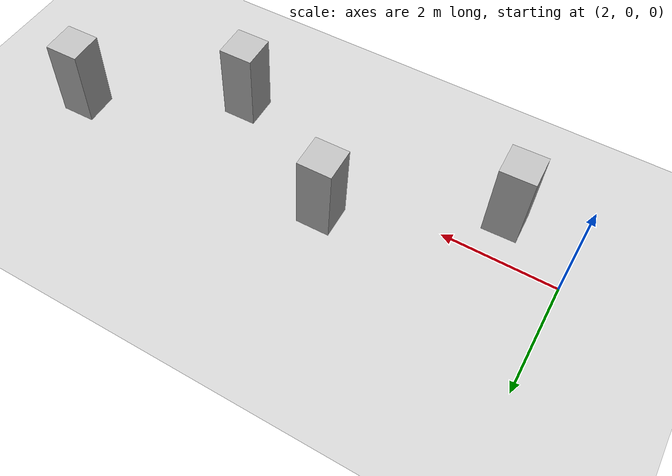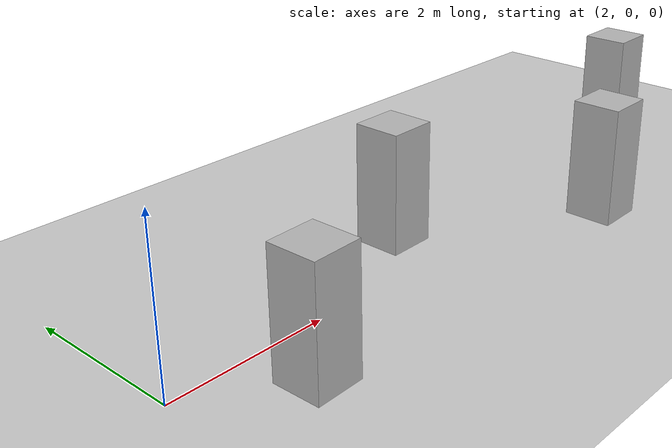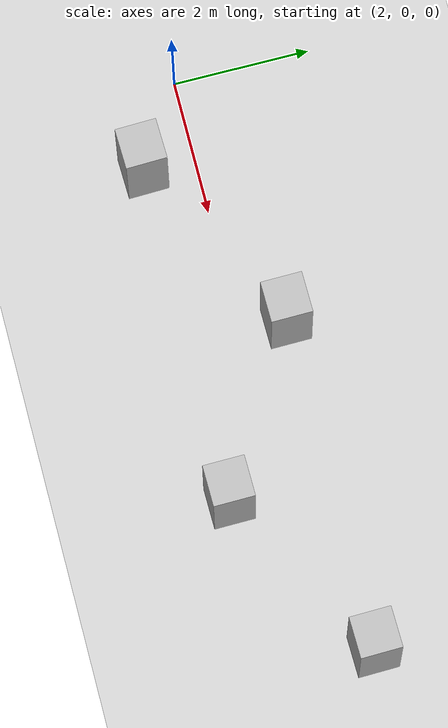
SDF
<?xml version="1.0"?>
<sdf version="1.6">
  <world name="v2-04g-r5-static-s5129">
    <gravity>0 0 -9.81</gravity>
    <physics name="v2_deterministic" type="ode">
      <max_step_size>0.002</max_step_size>
      <real_time_update_rate>500</real_time_update_rate>
    </physics>
    <include>
      <uri>model://sun</uri>
    </include>
    <include>
      <uri>model://ground_plane</uri>
    </include>
    <model name="pillar-1">
      <static>true</static>
      <pose>3.205618559 -0.761827055 0.750000000 0 0 0.029519272</pose>
      <link name="link">
        <collision name="collision">
          <geometry>
            <box>
              <size>0.600000 0.600000 1.500000</size>
            </box>
          </geometry>
        </collision>
        <visual name="visual">
          <geometry>
            <box>
              <size>0.600000 0.600000 1.500000</size>
            </box>
          </geometry>
        </visual>
      </link>
    </model>
    <model name="pillar-2">
      <static>true</static>
      <pose>5.880923894 0.657143636 0.750000000 0 0 0.013278495</pose>
      <link name="link">
        <collision name="collision">
          <geometry>
            <box>
              <size>0.600000 0.600000 1.500000</size>
            </box>
          </geometry>
        </collision>
        <visual name="visual">
          <geometry>
            <box>
              <size>0.600000 0.600000 1.500000</size>
            </box>
          </geometry>
        </visual>
      </link>
    </model>
    <model name="pillar-3">
      <static>true</static>
      <pose>8.221826432 -0.777599235 0.750000000 0 0 0.012584753</pose>
      <link name="link">
        <collision name="collision">
          <geometry>
            <box>
              <size>0.600000 0.600000 1.500000</size>
            </box>
          </geometry>
        </collision>
        <visual name="visual">
          <geometry>
            <box>
              <size>0.600000 0.600000 1.500000</size>
            </box>
          </geometry>
        </visual>
      </link>
    </model>
    <model name="pillar-4">
      <static>true</static>
      <pose>10.781434479 0.638544188 0.750000000 0 0 0.020907703</pose>
      <link name="link">
        <collision name="collision">
          <geometry>
            <box>
              <size>0.600000 0.600000 1.500000</size>
            </box>
          </geometry>
        </collision>
        <visual name="visual">
          <geometry>
            <box>
              <size>0.600000 0.600000 1.500000</size>
            </box>
          </geometry>
        </visual>
      </link>
    </model>
  </world>
</sdf>
